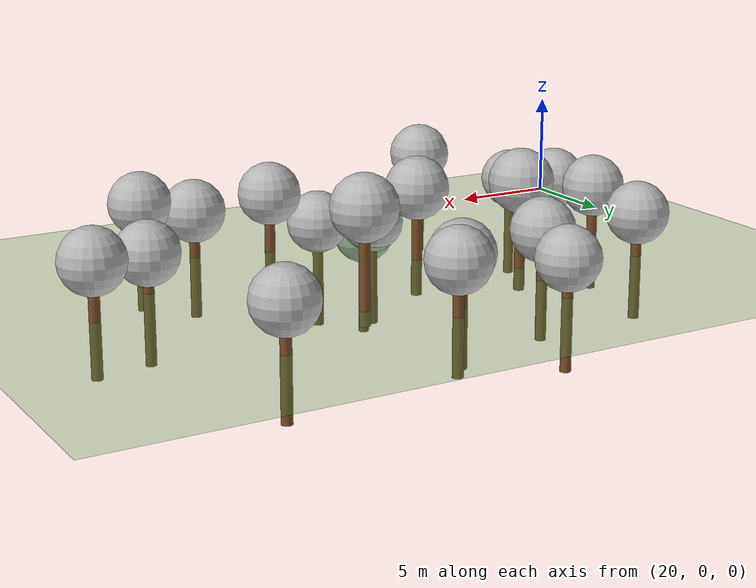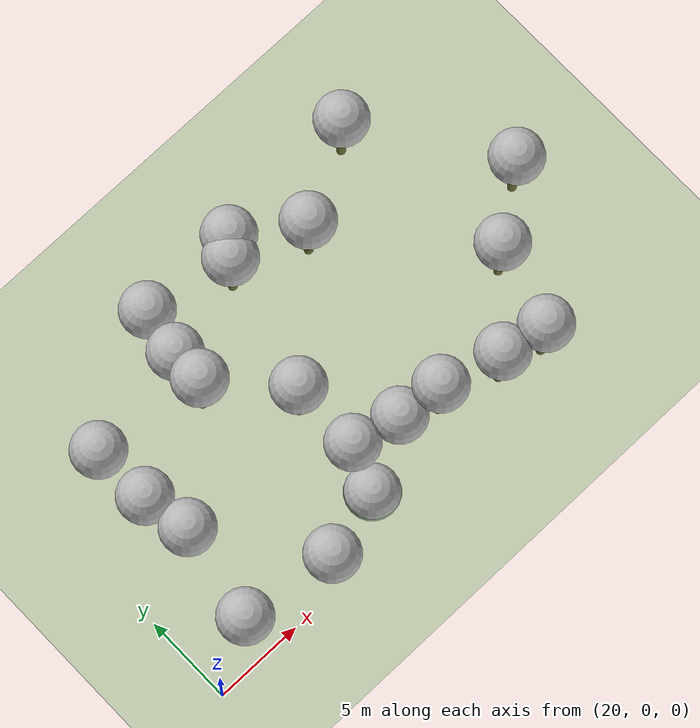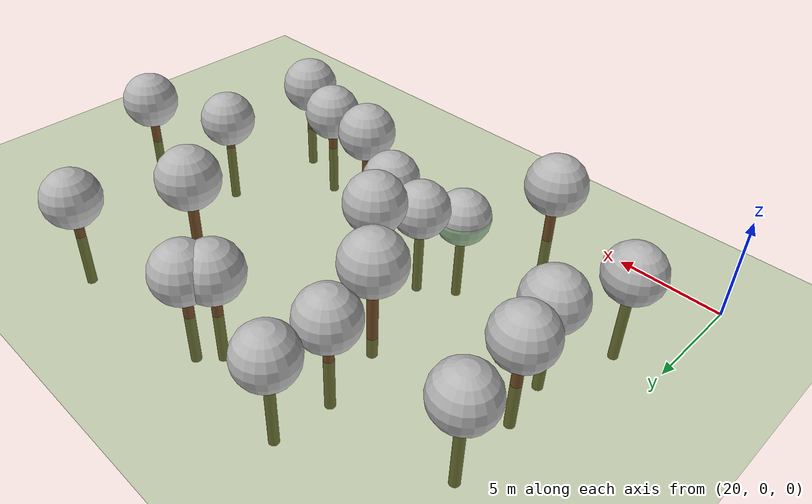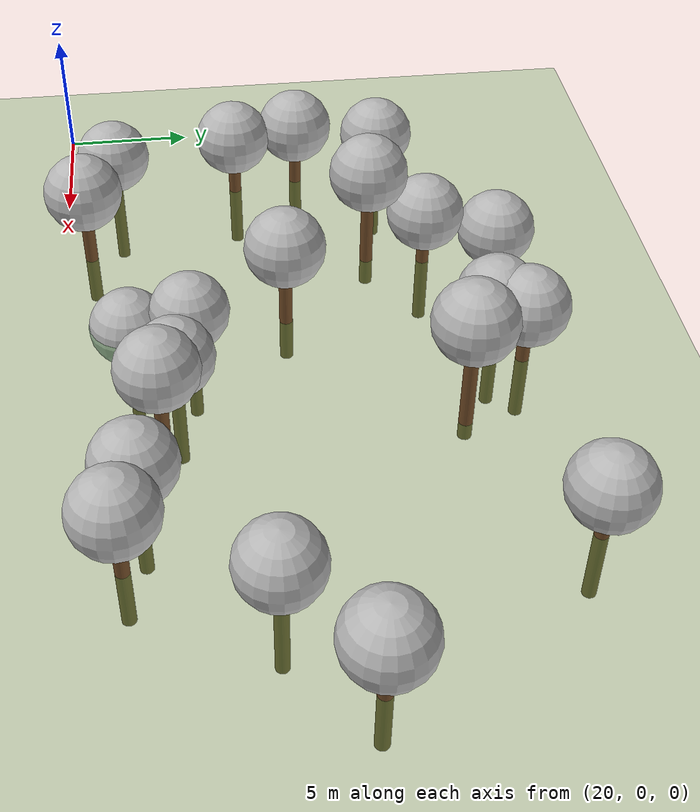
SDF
<sdf version="1.7">
 <world name="default">
  <model name="tree_simple490">
   <static>1</static>
   <link name="link">
    <pose>0 0 0.1 0 -0 0</pose>
    <collision name="collision_trunk">
     <pose>0 0 2 0 -0 0</pose>
     <geometry><cylinder><radius>0.25</radius><length>4</length></cylinder></geometry>
    </collision>
    <collision name="collision_treetop">
     <pose>0 0 5.2 0 -0 0</pose>
     <geometry><sphere><radius>1.5</radius></sphere></geometry>
    </collision>
    <visual name="trunk">
     <pose>0 0 2 0 -0 0</pose>
     <geometry><cylinder><radius>0.25</radius><length>4</length></cylinder></geometry>
     <material>
      <script>
       <uri>model://tree_simple/scripts</uri>
       <uri>model://tree_simple/materials/textures</uri>
       <name>TreeSimple/Trunk</name>
      </script>
     </material>
    </visual>
    <visual name="treetop">
     <pose>0 0 5.2 0 -0 0</pose>
     <geometry><sphere><radius>1.5</radius></sphere></geometry>
     <material>
      <script>
       <uri>model://tree_simple/scripts</uri>
       <uri>model://tree_simple/materials/textures</uri>
       <name>TreeSimple/Treetop</name>
      </script>
     </material>
    </visual>
   </link>
   <pose>28.4863 0.994684 -2.15347 0 -0 0</pose>
  </model>
  <model name="tree_simple487">
   <static>1</static>
   <link name="link">
    <pose>0 0 0.1 0 -0 0</pose>
    <collision name="collision_trunk">
     <pose>0 0 2 0 -0 0</pose>
     <geometry><cylinder><radius>0.25</radius><length>4</length></cylinder></geometry>
    </collision>
    <collision name="collision_treetop">
     <pose>0 0 5.2 0 -0 0</pose>
     <geometry><sphere><radius>1.5</radius></sphere></geometry>
    </collision>
    <visual name="trunk">
     <pose>0 0 2 0 -0 0</pose>
     <geometry><cylinder><radius>0.25</radius><length>4</length></cylinder></geometry>
     <material>
      <script>
       <uri>model://tree_simple/scripts</uri>
       <uri>model://tree_simple/materials/textures</uri>
       <name>TreeSimple/Trunk</name>
      </script>
     </material>
    </visual>
    <visual name="treetop">
     <pose>0 0 5.2 0 -0 0</pose>
     <geometry><sphere><radius>1.5</radius></sphere></geometry>
     <material>
      <script>
       <uri>model://tree_simple/scripts</uri>
       <uri>model://tree_simple/materials/textures</uri>
       <name>TreeSimple/Treetop</name>
      </script>
     </material>
    </visual>
   </link>
   <pose>33.128 8.35332 -1.88528 0 -0 0</pose>
  </model>
  <model name="tree_simple485">
   <static>1</static>
   <link name="link">
    <pose>0 0 0.1 0 -0 0</pose>
    <collision name="collision_trunk">
     <pose>0 0 2 0 -0 0</pose>
     <geometry><cylinder><radius>0.25</radius><length>4</length></cylinder></geometry>
    </collision>
    <collision name="collision_treetop">
     <pose>0 0 5.2 0 -0 0</pose>
     <geometry><sphere><radius>1.5</radius></sphere></geometry>
    </collision>
    <visual name="trunk">
     <pose>0 0 2 0 -0 0</pose>
     <geometry><cylinder><radius>0.25</radius><length>4</length></cylinder></geometry>
     <material>
      <script>
       <uri>model://tree_simple/scripts</uri>
       <uri>model://tree_simple/materials/textures</uri>
       <name>TreeSimple/Trunk</name>
      </script>
     </material>
    </visual>
    <visual name="treetop">
     <pose>0 0 5.2 0 -0 0</pose>
     <geometry><sphere><radius>1.5</radius></sphere></geometry>
     <material>
      <script>
       <uri>model://tree_simple/scripts</uri>
       <uri>model://tree_simple/materials/textures</uri>
       <name>TreeSimple/Treetop</name>
      </script>
     </material>
    </visual>
   </link>
   <pose>38.4673 3.60529 -2.50161 0 -0 0</pose>
  </model>
  <model name="tree_simple354">
   <static>1</static>
   <link name="link">
    <pose>0 0 0.1 0 -0 0</pose>
    <collision name="collision_trunk">
     <pose>0 0 2 0 -0 0</pose>
     <geometry><cylinder><radius>0.25</radius><length>4</length></cylinder></geometry>
    </collision>
    <collision name="collision_treetop">
     <pose>0 0 5.2 0 -0 0</pose>
     <geometry><sphere><radius>1.5</radius></sphere></geometry>
    </collision>
    <visual name="trunk">
     <pose>0 0 2 0 -0 0</pose>
     <geometry><cylinder><radius>0.25</radius><length>4</length></cylinder></geometry>
     <material>
      <script>
       <uri>model://tree_simple/scripts</uri>
       <uri>model://tree_simple/materials/textures</uri>
       <name>TreeSimple/Trunk</name>
      </script>
     </material>
    </visual>
    <visual name="treetop">
     <pose>0 0 5.2 0 -0 0</pose>
     <geometry><sphere><radius>1.5</radius></sphere></geometry>
     <material>
      <script>
       <uri>model://tree_simple/scripts</uri>
       <uri>model://tree_simple/materials/textures</uri>
       <name>TreeSimple/Treetop</name>
      </script>
     </material>
    </visual>
   </link>
   <pose>32.6408 2.42608 -5.51049 0 -0 0</pose>
  </model>
  <model name="tree_simple297">
   <static>1</static>
   <link name="link">
    <pose>0 0 0.1 0 -0 0</pose>
    <collision name="collision_trunk">
     <pose>0 0 2 0 -0 0</pose>
     <geometry><cylinder><radius>0.25</radius><length>4</length></cylinder></geometry>
    </collision>
    <collision name="collision_treetop">
     <pose>0 0 5.2 0 -0 0</pose>
     <geometry><sphere><radius>1.5</radius></sphere></geometry>
    </collision>
    <visual name="trunk">
     <pose>0 0 2 0 -0 0</pose>
     <geometry><cylinder><radius>0.25</radius><length>4</length></cylinder></geometry>
     <material>
      <script>
       <uri>model://tree_simple/scripts</uri>
       <uri>model://tree_simple/materials/textures</uri>
       <name>TreeSimple/Trunk</name>
      </script>
     </material>
    </visual>
    <visual name="treetop">
     <pose>0 0 5.2 0 -0 0</pose>
     <geometry><sphere><radius>1.5</radius></sphere></geometry>
     <material>
      <script>
       <uri>model://tree_simple/scripts</uri>
       <uri>model://tree_simple/materials/textures</uri>
       <name>TreeSimple/Treetop</name>
      </script>
     </material>
    </visual>
   </link>
   <pose>30.5775 16.8176 -3.57782 0 -0 0</pose>
  </model>
  <model name="tree_simple296">
   <static>1</static>
   <link name="link">
    <pose>0 0 0.1 0 -0 0</pose>
    <collision name="collision_trunk">
     <pose>0 0 2 0 -0 0</pose>
     <geometry><cylinder><radius>0.25</radius><length>4</length></cylinder></geometry>
    </collision>
    <collision name="collision_treetop">
     <pose>0 0 5.2 0 -0 0</pose>
     <geometry><sphere><radius>1.5</radius></sphere></geometry>
    </collision>
    <visual name="trunk">
     <pose>0 0 2 0 -0 0</pose>
     <geometry><cylinder><radius>0.25</radius><length>4</length></cylinder></geometry>
     <material>
      <script>
       <uri>model://tree_simple/scripts</uri>
       <uri>model://tree_simple/materials/textures</uri>
       <name>TreeSimple/Trunk</name>
      </script>
     </material>
    </visual>
    <visual name="treetop">
     <pose>0 0 5.2 0 -0 0</pose>
     <geometry><sphere><radius>1.5</radius></sphere></geometry>
     <material>
      <script>
       <uri>model://tree_simple/scripts</uri>
       <uri>model://tree_simple/materials/textures</uri>
       <name>TreeSimple/Treetop</name>
      </script>
     </material>
    </visual>
   </link>
   <pose>44.6267 17.3019 -3.09644 0 -0 0</pose>
  </model>
  <model name="tree_simple293">
   <static>1</static>
   <link name="link">
    <pose>0 0 0.1 0 -0 0</pose>
    <collision name="collision_trunk">
     <pose>0 0 2 0 -0 0</pose>
     <geometry><cylinder><radius>0.25</radius><length>4</length></cylinder></geometry>
    </collision>
    <collision name="collision_treetop">
     <pose>0 0 5.2 0 -0 0</pose>
     <geometry><sphere><radius>1.5</radius></sphere></geometry>
    </collision>
    <visual name="trunk">
     <pose>0 0 2 0 -0 0</pose>
     <geometry><cylinder><radius>0.25</radius><length>4</length></cylinder></geometry>
     <material>
      <script>
       <uri>model://tree_simple/scripts</uri>
       <uri>model://tree_simple/materials/textures</uri>
       <name>TreeSimple/Trunk</name>
      </script>
     </material>
    </visual>
    <visual name="treetop">
     <pose>0 0 5.2 0 -0 0</pose>
     <geometry><sphere><radius>1.5</radius></sphere></geometry>
     <material>
      <script>
       <uri>model://tree_simple/scripts</uri>
       <uri>model://tree_simple/materials/textures</uri>
       <name>TreeSimple/Treetop</name>
      </script>
     </material>
    </visual>
   </link>
   <pose>23.4064 1.9398 -3.87523 0 -0 0</pose>
  </model>
  <model name="tree_simple283">
   <static>1</static>
   <link name="link">
    <pose>0 0 0.1 0 -0 0</pose>
    <collision name="collision_trunk">
     <pose>0 0 2 0 -0 0</pose>
     <geometry><cylinder><radius>0.25</radius><length>4</length></cylinder></geometry>
    </collision>
    <collision name="collision_treetop">
     <pose>0 0 5.2 0 -0 0</pose>
     <geometry><sphere><radius>1.5</radius></sphere></geometry>
    </collision>
    <visual name="trunk">
     <pose>0 0 2 0 -0 0</pose>
     <geometry><cylinder><radius>0.25</radius><length>4</length></cylinder></geometry>
     <material>
      <script>
       <uri>model://tree_simple/scripts</uri>
       <uri>model://tree_simple/materials/textures</uri>
       <name>TreeSimple/Trunk</name>
      </script>
     </material>
    </visual>
    <visual name="treetop">
     <pose>0 0 5.2 0 -0 0</pose>
     <geometry><sphere><radius>1.5</radius></sphere></geometry>
     <material>
      <script>
       <uri>model://tree_simple/scripts</uri>
       <uri>model://tree_simple/materials/textures</uri>
       <name>TreeSimple/Treetop</name>
      </script>
     </material>
    </visual>
   </link>
   <pose>39.1815 14.0237 -0.816263 0 -0 0</pose>
  </model>
  <model name="tree_simple277">
   <static>1</static>
   <link name="link">
    <pose>0 0 0.1 0 -0 0</pose>
    <collision name="collision_trunk">
     <pose>0 0 2 0 -0 0</pose>
     <geometry><cylinder><radius>0.25</radius><length>4</length></cylinder></geometry>
    </collision>
    <collision name="collision_treetop">
     <pose>0 0 5.2 0 -0 0</pose>
     <geometry><sphere><radius>1.5</radius></sphere></geometry>
    </collision>
    <visual name="trunk">
     <pose>0 0 2 0 -0 0</pose>
     <geometry><cylinder><radius>0.25</radius><length>4</length></cylinder></geometry>
     <material>
      <script>
       <uri>model://tree_simple/scripts</uri>
       <uri>model://tree_simple/materials/textures</uri>
       <name>TreeSimple/Trunk</name>
      </script>
     </material>
    </visual>
    <visual name="treetop">
     <pose>0 0 5.2 0 -0 0</pose>
     <geometry><sphere><radius>1.5</radius></sphere></geometry>
     <material>
      <script>
       <uri>model://tree_simple/scripts</uri>
       <uri>model://tree_simple/materials/textures</uri>
       <name>TreeSimple/Treetop</name>
      </script>
     </material>
    </visual>
   </link>
   <pose>29.6987 11.8803 -1.23059 0 -0 0</pose>
  </model>
  <model name="tree_simple274">
   <static>1</static>
   <link name="link">
    <pose>0 0 0.1 0 -0 0</pose>
    <collision name="collision_trunk">
     <pose>0 0 2 0 -0 0</pose>
     <geometry><cylinder><radius>0.25</radius><length>4</length></cylinder></geometry>
    </collision>
    <collision name="collision_treetop">
     <pose>0 0 5.2 0 -0 0</pose>
     <geometry><sphere><radius>1.5</radius></sphere></geometry>
    </collision>
    <visual name="trunk">
     <pose>0 0 2 0 -0 0</pose>
     <geometry><cylinder><radius>0.25</radius><length>4</length></cylinder></geometry>
     <material>
      <script>
       <uri>model://tree_simple/scripts</uri>
       <uri>model://tree_simple/materials/textures</uri>
       <name>TreeSimple/Trunk</name>
      </script>
     </material>
    </visual>
    <visual name="treetop">
     <pose>0 0 5.2 0 -0 0</pose>
     <geometry><sphere><radius>1.5</radius></sphere></geometry>
     <material>
      <script>
       <uri>model://tree_simple/scripts</uri>
       <uri>model://tree_simple/materials/textures</uri>
       <name>TreeSimple/Treetop</name>
      </script>
     </material>
    </visual>
   </link>
   <pose>36.1445 4.12221 -4.07969 0 -0 0</pose>
  </model>
  <model name="tree_simple270">
   <static>1</static>
   <link name="link">
    <pose>0 0 0.1 0 -0 0</pose>
    <collision name="collision_trunk">
     <pose>0 0 2 0 -0 0</pose>
     <geometry><cylinder><radius>0.25</radius><length>4</length></cylinder></geometry>
    </collision>
    <collision name="collision_treetop">
     <pose>0 0 5.2 0 -0 0</pose>
     <geometry><sphere><radius>1.5</radius></sphere></geometry>
    </collision>
    <visual name="trunk">
     <pose>0 0 2 0 -0 0</pose>
     <geometry><cylinder><radius>0.25</radius><length>4</length></cylinder></geometry>
     <material>
      <script>
       <uri>model://tree_simple/scripts</uri>
       <uri>model://tree_simple/materials/textures</uri>
       <name>TreeSimple/Trunk</name>
      </script>
     </material>
    </visual>
    <visual name="treetop">
     <pose>0 0 5.2 0 -0 0</pose>
     <geometry><sphere><radius>1.5</radius></sphere></geometry>
     <material>
      <script>
       <uri>model://tree_simple/scripts</uri>
       <uri>model://tree_simple/materials/textures</uri>
       <name>TreeSimple/Treetop</name>
      </script>
     </material>
    </visual>
   </link>
   <pose>36.1849 16.7262 -2.85997 0 -0 0</pose>
  </model>
  <model name="tree_simple242">
   <static>1</static>
   <link name="link">
    <pose>0 0 0.1 0 -0 0</pose>
    <collision name="collision_trunk">
     <pose>0 0 2 0 -0 0</pose>
     <geometry><cylinder><radius>0.25</radius><length>4</length></cylinder></geometry>
    </collision>
    <collision name="collision_treetop">
     <pose>0 0 5.2 0 -0 0</pose>
     <geometry><sphere><radius>1.5</radius></sphere></geometry>
    </collision>
    <visual name="trunk">
     <pose>0 0 2 0 -0 0</pose>
     <geometry><cylinder><radius>0.25</radius><length>4</length></cylinder></geometry>
     <material>
      <script>
       <uri>model://tree_simple/scripts</uri>
       <uri>model://tree_simple/materials/textures</uri>
       <name>TreeSimple/Trunk</name>
      </script>
     </material>
    </visual>
    <visual name="treetop">
     <pose>0 0 5.2 0 -0 0</pose>
     <geometry><sphere><radius>1.5</radius></sphere></geometry>
     <material>
      <script>
       <uri>model://tree_simple/scripts</uri>
       <uri>model://tree_simple/materials/textures</uri>
       <name>TreeSimple/Treetop</name>
      </script>
     </material>
    </visual>
   </link>
   <pose>23.8094 9.61975 -2.6418 0 -0 0</pose>
  </model>
  <model name="tree_simple237">
   <static>1</static>
   <link name="link">
    <pose>0 0 0.1 0 -0 0</pose>
    <collision name="collision_trunk">
     <pose>0 0 2 0 -0 0</pose>
     <geometry><cylinder><radius>0.25</radius><length>4</length></cylinder></geometry>
    </collision>
    <collision name="collision_treetop">
     <pose>0 0 5.2 0 -0 0</pose>
     <geometry><sphere><radius>1.5</radius></sphere></geometry>
    </collision>
    <visual name="trunk">
     <pose>0 0 2 0 -0 0</pose>
     <geometry><cylinder><radius>0.25</radius><length>4</length></cylinder></geometry>
     <material>
      <script>
       <uri>model://tree_simple/scripts</uri>
       <uri>model://tree_simple/materials/textures</uri>
       <name>TreeSimple/Trunk</name>
      </script>
     </material>
    </visual>
    <visual name="treetop">
     <pose>0 0 5.2 0 -0 0</pose>
     <geometry><sphere><radius>1.5</radius></sphere></geometry>
     <material>
      <script>
       <uri>model://tree_simple/scripts</uri>
       <uri>model://tree_simple/materials/textures</uri>
       <name>TreeSimple/Treetop</name>
      </script>
     </material>
    </visual>
   </link>
   <pose>23.7965 13.076 -3.24584 0 -0 0</pose>
  </model>
  <model name="tree_simple151">
   <static>1</static>
   <link name="link">
    <pose>0 0 0.1 0 -0 0</pose>
    <collision name="collision_trunk">
     <pose>0 0 2 0 -0 0</pose>
     <geometry><cylinder><radius>0.25</radius><length>4</length></cylinder></geometry>
    </collision>
    <collision name="collision_treetop">
     <pose>0 0 5.2 0 -0 0</pose>
     <geometry><sphere><radius>1.5</radius></sphere></geometry>
    </collision>
    <visual name="trunk">
     <pose>0 0 2 0 -0 0</pose>
     <geometry><cylinder><radius>0.25</radius><length>4</length></cylinder></geometry>
     <material>
      <script>
       <uri>model://tree_simple/scripts</uri>
       <uri>model://tree_simple/materials/textures</uri>
       <name>TreeSimple/Trunk</name>
      </script>
     </material>
    </visual>
    <visual name="treetop">
     <pose>0 0 5.2 0 -0 0</pose>
     <geometry><sphere><radius>1.5</radius></sphere></geometry>
     <material>
      <script>
       <uri>model://tree_simple/scripts</uri>
       <uri>model://tree_simple/materials/textures</uri>
       <name>TreeSimple/Treetop</name>
      </script>
     </material>
    </visual>
   </link>
   <pose>44.4996 2.22143 -2.53215 0 -0 0</pose>
  </model>
  <model name="tree_simple147">
   <static>1</static>
   <link name="link">
    <pose>0 0 0.1 0 -0 0</pose>
    <collision name="collision_trunk">
     <pose>0 0 2 0 -0 0</pose>
     <geometry><cylinder><radius>0.25</radius><length>4</length></cylinder></geometry>
    </collision>
    <collision name="collision_treetop">
     <pose>0 0 5.2 0 -0 0</pose>
     <geometry><sphere><radius>1.5</radius></sphere></geometry>
    </collision>
    <visual name="trunk">
     <pose>0 0 2 0 -0 0</pose>
     <geometry><cylinder><radius>0.25</radius><length>4</length></cylinder></geometry>
     <material>
      <script>
       <uri>model://tree_simple/scripts</uri>
       <uri>model://tree_simple/materials/textures</uri>
       <name>TreeSimple/Trunk</name>
      </script>
     </material>
    </visual>
    <visual name="treetop">
     <pose>0 0 5.2 0 -0 0</pose>
     <geometry><sphere><radius>1.5</radius></sphere></geometry>
     <material>
      <script>
       <uri>model://tree_simple/scripts</uri>
       <uri>model://tree_simple/materials/textures</uri>
       <name>TreeSimple/Treetop</name>
      </script>
     </material>
    </visual>
   </link>
   <pose>35.3938 15.7697 -2.90385 0 -0 0</pose>
  </model>
  <model name="tree_simple125">
   <static>1</static>
   <link name="link">
    <pose>0 0 0.1 0 -0 0</pose>
    <collision name="collision_trunk">
     <pose>0 0 2 0 -0 0</pose>
     <geometry><cylinder><radius>0.25</radius><length>4</length></cylinder></geometry>
    </collision>
    <collision name="collision_treetop">
     <pose>0 0 5.2 0 -0 0</pose>
     <geometry><sphere><radius>1.5</radius></sphere></geometry>
    </collision>
    <visual name="trunk">
     <pose>0 0 2 0 -0 0</pose>
     <geometry><cylinder><radius>0.25</radius><length>4</length></cylinder></geometry>
     <material>
      <script>
       <uri>model://tree_simple/scripts</uri>
       <uri>model://tree_simple/materials/textures</uri>
       <name>TreeSimple/Trunk</name>
      </script>
     </material>
    </visual>
    <visual name="treetop">
     <pose>0 0 5.2 0 -0 0</pose>
     <geometry><sphere><radius>1.5</radius></sphere></geometry>
     <material>
      <script>
       <uri>model://tree_simple/scripts</uri>
       <uri>model://tree_simple/materials/textures</uri>
       <name>TreeSimple/Treetop</name>
      </script>
     </material>
    </visual>
   </link>
   <pose>49.6377 9.60983 -2.72078 0 -0 0</pose>
  </model>
  <model name="tree_simple88">
   <static>1</static>
   <link name="link">
    <pose>0 0 0.1 0 -0 0</pose>
    <collision name="collision_trunk">
     <pose>0 0 2 0 -0 0</pose>
     <geometry><cylinder><radius>0.25</radius><length>4</length></cylinder></geometry>
    </collision>
    <collision name="collision_treetop">
     <pose>0 0 5.2 0 -0 0</pose>
     <geometry><sphere><radius>1.5</radius></sphere></geometry>
    </collision>
    <visual name="trunk">
     <pose>0 0 2 0 -0 0</pose>
     <geometry><cylinder><radius>0.25</radius><length>4</length></cylinder></geometry>
     <material>
      <script>
       <uri>model://tree_simple/scripts</uri>
       <uri>model://tree_simple/materials/textures</uri>
       <name>TreeSimple/Trunk</name>
      </script>
     </material>
    </visual>
    <visual name="treetop">
     <pose>0 0 5.2 0 -0 0</pose>
     <geometry><sphere><radius>1.5</radius></sphere></geometry>
     <material>
      <script>
       <uri>model://tree_simple/scripts</uri>
       <uri>model://tree_simple/materials/textures</uri>
       <name>TreeSimple/Treetop</name>
      </script>
     </material>
    </visual>
   </link>
   <pose>30.0101 14.1017 -2.9972 0 -0 0</pose>
  </model>
  <model name="tree_simple82">
   <static>1</static>
   <link name="link">
    <pose>0 0 0.1 0 -0 0</pose>
    <collision name="collision_trunk">
     <pose>0 0 2 0 -0 0</pose>
     <geometry><cylinder><radius>0.25</radius><length>4</length></cylinder></geometry>
    </collision>
    <collision name="collision_treetop">
     <pose>0 0 5.2 0 -0 0</pose>
     <geometry><sphere><radius>1.5</radius></sphere></geometry>
    </collision>
    <visual name="trunk">
     <pose>0 0 2 0 -0 0</pose>
     <geometry><cylinder><radius>0.25</radius><length>4</length></cylinder></geometry>
     <material>
      <script>
       <uri>model://tree_simple/scripts</uri>
       <uri>model://tree_simple/materials/textures</uri>
       <name>TreeSimple/Trunk</name>
      </script>
     </material>
    </visual>
    <visual name="treetop">
     <pose>0 0 5.2 0 -0 0</pose>
     <geometry><sphere><radius>1.5</radius></sphere></geometry>
     <material>
      <script>
       <uri>model://tree_simple/scripts</uri>
       <uri>model://tree_simple/materials/textures</uri>
       <name>TreeSimple/Treetop</name>
      </script>
     </material>
    </visual>
   </link>
   <pose>42.0262 2.77521 -3.08866 0 -0 0</pose>
  </model>
  <model name="tree_simple69">
   <static>1</static>
   <link name="link">
    <pose>0 0 0.1 0 -0 0</pose>
    <collision name="collision_trunk">
     <pose>0 0 2 0 -0 0</pose>
     <geometry><cylinder><radius>0.25</radius><length>4</length></cylinder></geometry>
    </collision>
    <collision name="collision_treetop">
     <pose>0 0 5.2 0 -0 0</pose>
     <geometry><sphere><radius>1.5</radius></sphere></geometry>
    </collision>
    <visual name="trunk">
     <pose>0 0 2 0 -0 0</pose>
     <geometry><cylinder><radius>0.25</radius><length>4</length></cylinder></geometry>
     <material>
      <script>
       <uri>model://tree_simple/scripts</uri>
       <uri>model://tree_simple/materials/textures</uri>
       <name>TreeSimple/Trunk</name>
      </script>
     </material>
    </visual>
    <visual name="treetop">
     <pose>0 0 5.2 0 -0 0</pose>
     <geometry><sphere><radius>1.5</radius></sphere></geometry>
     <material>
      <script>
       <uri>model://tree_simple/scripts</uri>
       <uri>model://tree_simple/materials/textures</uri>
       <name>TreeSimple/Treetop</name>
      </script>
     </material>
    </visual>
   </link>
   <pose>24.2741 7.00707 -2.73545 0 -0 0</pose>
  </model>
  <model name="tree_simple45">
   <static>1</static>
   <link name="link">
    <pose>0 0 0.1 0 -0 0</pose>
    <collision name="collision_trunk">
     <pose>0 0 2 0 -0 0</pose>
     <geometry><cylinder><radius>0.25</radius><length>4</length></cylinder></geometry>
    </collision>
    <collision name="collision_treetop">
     <pose>0 0 5.2 0 -0 0</pose>
     <geometry><sphere><radius>1.5</radius></sphere></geometry>
    </collision>
    <visual name="trunk">
     <pose>0 0 2 0 -0 0</pose>
     <geometry><cylinder><radius>0.25</radius><length>4</length></cylinder></geometry>
     <material>
      <script>
       <uri>model://tree_simple/scripts</uri>
       <uri>model://tree_simple/materials/textures</uri>
       <name>TreeSimple/Trunk</name>
      </script>
     </material>
    </visual>
    <visual name="treetop">
     <pose>0 0 5.2 0 -0 0</pose>
     <geometry><sphere><radius>1.5</radius></sphere></geometry>
     <material>
      <script>
       <uri>model://tree_simple/scripts</uri>
       <uri>model://tree_simple/materials/textures</uri>
       <name>TreeSimple/Treetop</name>
      </script>
     </material>
    </visual>
   </link>
   <pose>33.4753 4.75995 -4.26307 0 -0 0</pose>
  </model>
  <model name="tree_simple12">
   <static>1</static>
   <link name="link">
    <pose>0 0 0.1 0 -0 0</pose>
    <collision name="collision_trunk">
     <pose>0 0 2 0 -0 0</pose>
     <geometry><cylinder><radius>0.25</radius><length>4</length></cylinder></geometry>
    </collision>
    <collision name="collision_treetop">
     <pose>0 0 5.2 0 -0 0</pose>
     <geometry><sphere><radius>1.5</radius></sphere></geometry>
    </collision>
    <visual name="trunk">
     <pose>0 0 2 0 -0 0</pose>
     <geometry><cylinder><radius>0.25</radius><length>4</length></cylinder></geometry>
     <material>
      <script>
       <uri>model://tree_simple/scripts</uri>
       <uri>model://tree_simple/materials/textures</uri>
       <name>TreeSimple/Trunk</name>
      </script>
     </material>
    </visual>
    <visual name="treetop">
     <pose>0 0 5.2 0 -0 0</pose>
     <geometry><sphere><radius>1.5</radius></sphere></geometry>
     <material>
      <script>
       <uri>model://tree_simple/scripts</uri>
       <uri>model://tree_simple/materials/textures</uri>
       <name>TreeSimple/Treetop</name>
      </script>
     </material>
    </visual>
   </link>
   <pose>46.1246 6.97447 -3.53099 0 -0 0</pose>
  </model>
  <model name="ground_plane">
   <static>1</static>
   <link name="link">
    <collision name="collision">
     <geometry><plane><normal>0 0 1</normal><size>250 250</size></plane></geometry>
     <surface><friction><ode><mu>1</mu><mu2>1</mu2></ode></friction></surface>
    </collision>
    <visual name="grass">
     <cast_shadows>0</cast_shadows>
     <geometry><plane><normal>0 0 1</normal><size>150 250</size></plane></geometry>
     <material>
      <script><uri>file://media/materials/scripts/Gazebo.material</uri><name>Gazebo/Grass</name></script>
     </material>
    </visual>
   </link>
  </model>
 </world>
</sdf>
